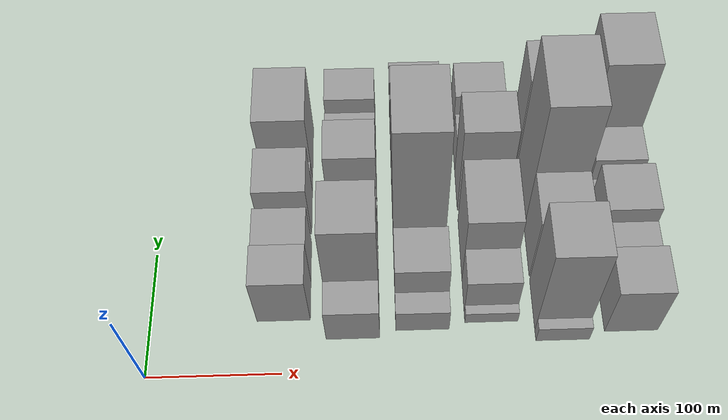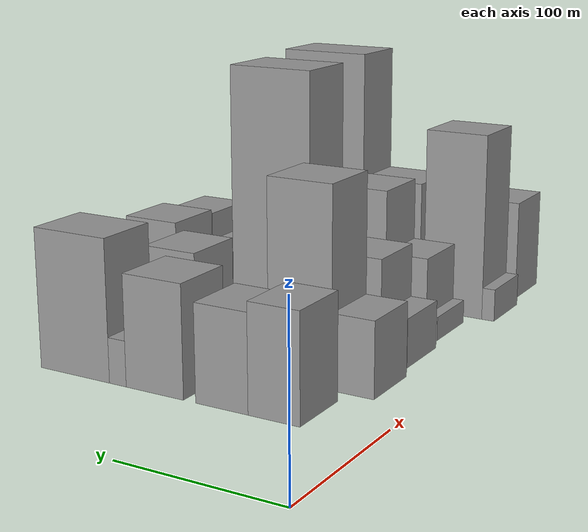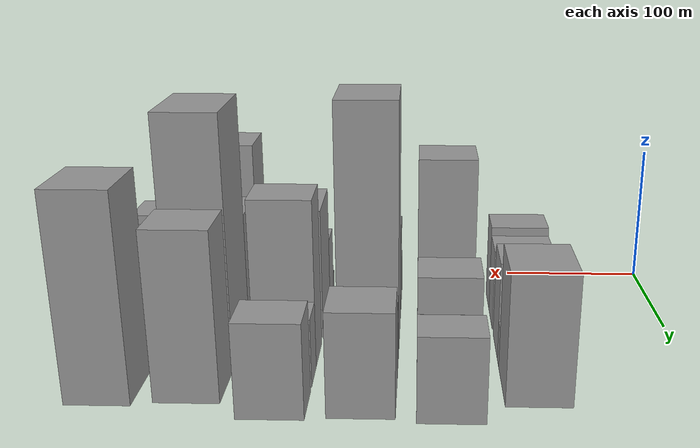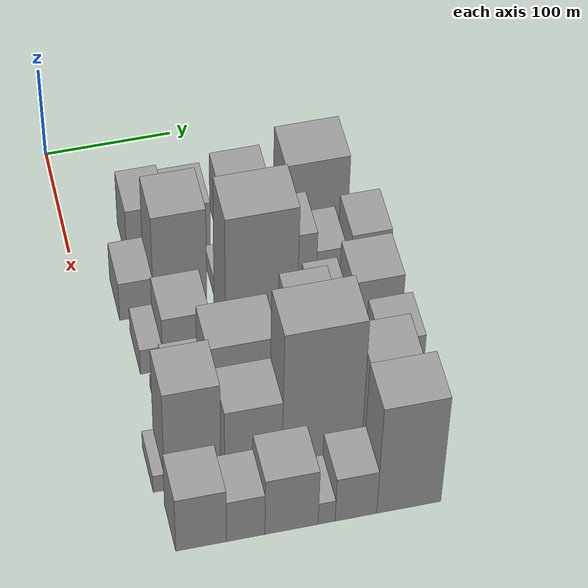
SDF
<sdf version="1.6">
 <world name="default">
  <model name="building_26">
   <static>1</static>
   <pose>100.0000 57.7635 0 0.000000 0.000000 0.000000</pose>
   <link name="link">
    <pose>0 0 31.50 0 0 0</pose>
    <collision name="collision"><geometry><box><size>40.0000 31.7774 63.0000</size></box></geometry></collision>
    <visual name="visual">
     <cast_shadows>0</cast_shadows>
     <geometry><box><size>40.0000 31.7774 63.0000</size></box></geometry>
     <material>
      <script>
       <uri>model://grey_wall/materials/scripts</uri>
       <uri>model://grey_wall/materials/textures</uri>
       <name>vrc/grey_wall</name>
      </script>
     </material>
    </visual>
   </link>
  </model>
  <model name="building_27">
   <static>1</static>
   <pose>100.0000 90.3993 0 0.000000 0.000000 0.000000</pose>
   <link name="link">
    <pose>0 0 28.50 0 0 0</pose>
    <collision name="collision"><geometry><box><size>40.0000 33.4941 57.0000</size></box></geometry></collision>
    <visual name="visual">
     <cast_shadows>0</cast_shadows>
     <geometry><box><size>40.0000 33.4941 57.0000</size></box></geometry>
     <material>
      <script>
       <uri>model://grey_wall/materials/scripts</uri>
       <uri>model://grey_wall/materials/textures</uri>
       <name>vrc/grey_wall</name>
      </script>
     </material>
    </visual>
   </link>
  </model>
  <model name="building_28">
   <static>1</static>
   <pose>100.0000 134.5882 0 0.000000 0.000000 0.000000</pose>
   <link name="link">
    <pose>0 0 33.00 0 0 0</pose>
    <collision name="collision"><geometry><box><size>40.0000 38.8838 66.0000</size></box></geometry></collision>
    <visual name="visual">
     <cast_shadows>0</cast_shadows>
     <geometry><box><size>40.0000 38.8838 66.0000</size></box></geometry>
     <material>
      <script>
       <uri>model://grey_wall/materials/scripts</uri>
       <uri>model://grey_wall/materials/textures</uri>
       <name>vrc/grey_wall</name>
      </script>
     </material>
    </visual>
   </link>
  </model>
  <model name="building_29">
   <static>1</static>
   <pose>100.0000 159.8942 0 0.000000 0.000000 0.000000</pose>
   <link name="link">
    <pose>0 0 13.50 0 0 0</pose>
    <collision name="collision"><geometry><box><size>40.0000 11.7282 27.0000</size></box></geometry></collision>
    <visual name="visual">
     <cast_shadows>0</cast_shadows>
     <geometry><box><size>40.0000 11.7282 27.0000</size></box></geometry>
     <material>
      <script>
       <uri>model://grey_wall/materials/scripts</uri>
       <uri>model://grey_wall/materials/textures</uri>
       <name>vrc/grey_wall</name>
      </script>
     </material>
    </visual>
   </link>
  </model>
  <model name="building_30">
   <static>1</static>
   <pose>100.0000 190.6563 0 0.000000 0.000000 0.000000</pose>
   <link name="link">
    <pose>0 0 42.00 0 0 0</pose>
    <collision name="collision"><geometry><box><size>40.0000 49.7961 84.0000</size></box></geometry></collision>
    <visual name="visual">
     <cast_shadows>0</cast_shadows>
     <geometry><box><size>40.0000 49.7961 84.0000</size></box></geometry>
     <material>
      <script>
       <uri>model://grey_wall/materials/scripts</uri>
       <uri>model://grey_wall/materials/textures</uri>
       <name>vrc/grey_wall</name>
      </script>
     </material>
    </visual>
   </link>
  </model>
  <model name="building_69">
   <static>1</static>
   <pose>152.0000 39.0133 0 0.000000 0.000000 0.000000</pose>
   <link name="link">
    <pose>0 0 22.50 0 0 0</pose>
    <collision name="collision"><geometry><box><size>40.0000 26.2181 45.0000</size></box></geometry></collision>
    <visual name="visual">
     <cast_shadows>0</cast_shadows>
     <geometry><box><size>40.0000 26.2181 45.0000</size></box></geometry>
     <material>
      <script>
       <uri>model://grey_wall/materials/scripts</uri>
       <uri>model://grey_wall/materials/textures</uri>
       <name>vrc/grey_wall</name>
      </script>
     </material>
    </visual>
   </link>
  </model>
  <model name="building_70">
   <static>1</static>
   <pose>152.0000 72.6944 0 0.000000 0.000000 0.000000</pose>
   <link name="link">
    <pose>0 0 58.50 0 0 0</pose>
    <collision name="collision"><geometry><box><size>40.0000 41.1441 117.0000</size></box></geometry></collision>
    <visual name="visual">
     <cast_shadows>0</cast_shadows>
     <geometry><box><size>40.0000 41.1441 117.0000</size></box></geometry>
     <material>
      <script>
       <uri>model://grey_wall/materials/scripts</uri>
       <uri>model://grey_wall/materials/textures</uri>
       <name>vrc/grey_wall</name>
      </script>
     </material>
    </visual>
   </link>
  </model>
  <model name="building_71">
   <static>1</static>
   <pose>152.0000 105.4673 0 0.000000 0.000000 0.000000</pose>
   <link name="link">
    <pose>0 0 10.50 0 0 0</pose>
    <collision name="collision"><geometry><box><size>40.0000 10.4016 21.0000</size></box></geometry></collision>
    <visual name="visual">
     <cast_shadows>0</cast_shadows>
     <geometry><box><size>40.0000 10.4016 21.0000</size></box></geometry>
     <material>
      <script>
       <uri>model://grey_wall/materials/scripts</uri>
       <uri>model://grey_wall/materials/textures</uri>
       <name>vrc/grey_wall</name>
      </script>
     </material>
    </visual>
   </link>
  </model>
  <model name="building_72">
   <static>1</static>
   <pose>152.0000 124.7403 0 0.000000 0.000000 0.000000</pose>
   <link name="link">
    <pose>0 0 18.00 0 0 0</pose>
    <collision name="collision"><geometry><box><size>40.0000 18.1444 36.0000</size></box></geometry></collision>
    <visual name="visual">
     <cast_shadows>0</cast_shadows>
     <geometry><box><size>40.0000 18.1444 36.0000</size></box></geometry>
     <material>
      <script>
       <uri>model://grey_wall/materials/scripts</uri>
       <uri>model://grey_wall/materials/textures</uri>
       <name>vrc/grey_wall</name>
      </script>
     </material>
    </visual>
   </link>
  </model>
  <model name="building_73">
   <static>1</static>
   <pose>152.0000 160.4949 0 0.000000 0.000000 0.000000</pose>
   <link name="link">
    <pose>0 0 33.00 0 0 0</pose>
    <collision name="collision"><geometry><box><size>40.0000 35.3648 66.0000</size></box></geometry></collision>
    <visual name="visual">
     <cast_shadows>0</cast_shadows>
     <geometry><box><size>40.0000 35.3648 66.0000</size></box></geometry>
     <material>
      <script>
       <uri>model://grey_wall/materials/scripts</uri>
       <uri>model://grey_wall/materials/textures</uri>
       <name>vrc/grey_wall</name>
      </script>
     </material>
    </visual>
   </link>
  </model>
  <model name="building_74">
   <static>1</static>
   <pose>152.0000 189.7388 0 0.000000 0.000000 0.000000</pose>
   <link name="link">
    <pose>0 0 21.00 0 0 0</pose>
    <collision name="collision"><geometry><box><size>40.0000 23.1231 42.0000</size></box></geometry></collision>
    <visual name="visual">
     <cast_shadows>0</cast_shadows>
     <geometry><box><size>40.0000 23.1231 42.0000</size></box></geometry>
     <material>
      <script>
       <uri>model://grey_wall/materials/scripts</uri>
       <uri>model://grey_wall/materials/textures</uri>
       <name>vrc/grey_wall</name>
      </script>
     </material>
    </visual>
   </link>
  </model>
  <model name="building_75">
   <static>1</static>
   <pose>152.0000 220.7002 0 0.000000 0.000000 0.000000</pose>
   <link name="link">
    <pose>0 0 27.00 0 0 0</pose>
    <collision name="collision"><geometry><box><size>40.0000 30.7996 54.0000</size></box></geometry></collision>
    <visual name="visual">
     <cast_shadows>0</cast_shadows>
     <geometry><box><size>40.0000 30.7996 54.0000</size></box></geometry>
     <material>
      <script>
       <uri>model://grey_wall/materials/scripts</uri>
       <uri>model://grey_wall/materials/textures</uri>
       <name>vrc/grey_wall</name>
      </script>
     </material>
    </visual>
   </link>
  </model>
  <model name="building_123">
   <static>1</static>
   <pose>204.0000 39.9931 0 0.000000 0.000000 0.000000</pose>
   <link name="link">
    <pose>0 0 15.00 0 0 0</pose>
    <collision name="collision"><geometry><box><size>40.0000 17.1262 30.0000</size></box></geometry></collision>
    <visual name="visual">
     <cast_shadows>0</cast_shadows>
     <geometry><box><size>40.0000 17.1262 30.0000</size></box></geometry>
     <material>
      <script>
       <uri>model://grey_wall/materials/scripts</uri>
       <uri>model://grey_wall/materials/textures</uri>
       <name>vrc/grey_wall</name>
      </script>
     </material>
    </visual>
   </link>
  </model>
  <model name="building_124">
   <static>1</static>
   <pose>204.0000 66.6481 0 0.000000 0.000000 0.000000</pose>
   <link name="link">
    <pose>0 0 31.50 0 0 0</pose>
    <collision name="collision"><geometry><box><size>40.0000 36.1836 63.0000</size></box></geometry></collision>
    <visual name="visual">
     <cast_shadows>0</cast_shadows>
     <geometry><box><size>40.0000 36.1836 63.0000</size></box></geometry>
     <material>
      <script>
       <uri>model://grey_wall/materials/scripts</uri>
       <uri>model://grey_wall/materials/textures</uri>
       <name>vrc/grey_wall</name>
      </script>
     </material>
    </visual>
   </link>
  </model>
  <model name="building_125">
   <static>1</static>
   <pose>204.0000 87.9606 0 0.000000 0.000000 0.000000</pose>
   <link name="link">
    <pose>0 0 7.50 0 0 0</pose>
    <collision name="collision"><geometry><box><size>40.0000 6.4415 15.0000</size></box></geometry></collision>
    <visual name="visual">
     <cast_shadows>0</cast_shadows>
     <geometry><box><size>40.0000 6.4415 15.0000</size></box></geometry>
     <material>
      <script>
       <uri>model://grey_wall/materials/scripts</uri>
       <uri>model://grey_wall/materials/textures</uri>
       <name>vrc/grey_wall</name>
      </script>
     </material>
    </visual>
   </link>
  </model>
  <model name="building_126">
   <static>1</static>
   <pose>204.0000 123.3204 0 0.000000 0.000000 0.000000</pose>
   <link name="link">
    <pose>0 0 84.00 0 0 0</pose>
    <collision name="collision"><geometry><box><size>40.0000 54.2782 168.0000</size></box></geometry></collision>
    <visual name="visual">
     <cast_shadows>0</cast_shadows>
     <geometry><box><size>40.0000 54.2782 168.0000</size></box></geometry>
     <material>
      <script>
       <uri>model://grey_wall/materials/scripts</uri>
       <uri>model://grey_wall/materials/textures</uri>
       <name>vrc/grey_wall</name>
      </script>
     </material>
    </visual>
   </link>
  </model>
  <model name="building_127">
   <static>1</static>
   <pose>204.0000 156.9671 0 0.000000 0.000000 0.000000</pose>
   <link name="link">
    <pose>0 0 13.50 0 0 0</pose>
    <collision name="collision"><geometry><box><size>40.0000 13.0151 27.0000</size></box></geometry></collision>
    <visual name="visual">
     <cast_shadows>0</cast_shadows>
     <geometry><box><size>40.0000 13.0151 27.0000</size></box></geometry>
     <material>
      <script>
       <uri>model://grey_wall/materials/scripts</uri>
       <uri>model://grey_wall/materials/textures</uri>
       <name>vrc/grey_wall</name>
      </script>
     </material>
    </visual>
   </link>
  </model>
  <model name="building_128">
   <static>1</static>
   <pose>204.0000 176.8619 0 0.000000 0.000000 0.000000</pose>
   <link name="link">
    <pose>0 0 24.00 0 0 0</pose>
    <collision name="collision"><geometry><box><size>40.0000 26.7745 48.0000</size></box></geometry></collision>
    <visual name="visual">
     <cast_shadows>0</cast_shadows>
     <geometry><box><size>40.0000 26.7745 48.0000</size></box></geometry>
     <material>
      <script>
       <uri>model://grey_wall/materials/scripts</uri>
       <uri>model://grey_wall/materials/textures</uri>
       <name>vrc/grey_wall</name>
      </script>
     </material>
    </visual>
   </link>
  </model>
  <model name="building_129">
   <static>1</static>
   <pose>204.0000 212.5238 0 0.000000 0.000000 0.000000</pose>
   <link name="link">
    <pose>0 0 33.00 0 0 0</pose>
    <collision name="collision"><geometry><box><size>40.0000 38.5494 66.0000</size></box></geometry></collision>
    <visual name="visual">
     <cast_shadows>0</cast_shadows>
     <geometry><box><size>40.0000 38.5494 66.0000</size></box></geometry>
     <material>
      <script>
       <uri>model://grey_wall/materials/scripts</uri>
       <uri>model://grey_wall/materials/textures</uri>
       <name>vrc/grey_wall</name>
      </script>
     </material>
    </visual>
   </link>
  </model>
  <model name="building_170">
   <static>1</static>
   <pose>256.0000 39.9478 0 0.000000 0.000000 0.000000</pose>
   <link name="link">
    <pose>0 0 7.50 0 0 0</pose>
    <collision name="collision"><geometry><box><size>40.0000 7.4678 15.0000</size></box></geometry></collision>
    <visual name="visual">
     <cast_shadows>0</cast_shadows>
     <geometry><box><size>40.0000 7.4678 15.0000</size></box></geometry>
     <material>
      <script>
       <uri>model://grey_wall/materials/scripts</uri>
       <uri>model://grey_wall/materials/textures</uri>
       <name>vrc/grey_wall</name>
      </script>
     </material>
    </visual>
   </link>
  </model>
  <model name="building_171">
   <static>1</static>
   <pose>256.0000 57.7739 0 0.000000 0.000000 0.000000</pose>
   <link name="link">
    <pose>0 0 25.50 0 0 0</pose>
    <collision name="collision"><geometry><box><size>40.0000 28.1845 51.0000</size></box></geometry></collision>
    <visual name="visual">
     <cast_shadows>0</cast_shadows>
     <geometry><box><size>40.0000 28.1845 51.0000</size></box></geometry>
     <material>
      <script>
       <uri>model://grey_wall/materials/scripts</uri>
       <uri>model://grey_wall/materials/textures</uri>
       <name>vrc/grey_wall</name>
      </script>
     </material>
    </visual>
   </link>
  </model>
  <model name="building_172">
   <static>1</static>
   <pose>256.0000 97.9400 0 0.000000 0.000000 0.000000</pose>
   <link name="link">
    <pose>0 0 45.00 0 0 0</pose>
    <collision name="collision"><geometry><box><size>40.0000 52.1477 90.0000</size></box></geometry></collision>
    <visual name="visual">
     <cast_shadows>0</cast_shadows>
     <geometry><box><size>40.0000 52.1477 90.0000</size></box></geometry>
     <material>
      <script>
       <uri>model://grey_wall/materials/scripts</uri>
       <uri>model://grey_wall/materials/textures</uri>
       <name>vrc/grey_wall</name>
      </script>
     </material>
    </visual>
   </link>
  </model>
  <model name="building_173">
   <static>1</static>
   <pose>256.0000 150.7555 0 0.000000 0.000000 0.000000</pose>
   <link name="link">
    <pose>0 0 55.50 0 0 0</pose>
    <collision name="collision"><geometry><box><size>40.0000 35.4832 111.0000</size></box></geometry></collision>
    <visual name="visual">
     <cast_shadows>0</cast_shadows>
     <geometry><box><size>40.0000 35.4832 111.0000</size></box></geometry>
     <material>
      <script>
       <uri>model://grey_wall/materials/scripts</uri>
       <uri>model://grey_wall/materials/textures</uri>
       <name>vrc/grey_wall</name>
      </script>
     </material>
    </visual>
   </link>
  </model>
  <model name="building_174">
   <static>1</static>
   <pose>256.0000 181.7886 0 0.000000 0.000000 0.000000</pose>
   <link name="link">
    <pose>0 0 22.50 0 0 0</pose>
    <collision name="collision"><geometry><box><size>40.0000 26.5829 45.0000</size></box></geometry></collision>
    <visual name="visual">
     <cast_shadows>0</cast_shadows>
     <geometry><box><size>40.0000 26.5829 45.0000</size></box></geometry>
     <material>
      <script>
       <uri>model://grey_wall/materials/scripts</uri>
       <uri>model://grey_wall/materials/textures</uri>
       <name>vrc/grey_wall</name>
      </script>
     </material>
    </visual>
   </link>
  </model>
  <model name="building_175">
   <static>1</static>
   <pose>256.0000 217.7363 0 0.000000 0.000000 0.000000</pose>
   <link name="link">
    <pose>0 0 30.00 0 0 0</pose>
    <collision name="collision"><geometry><box><size>40.0000 33.3126 60.0000</size></box></geometry></collision>
    <visual name="visual">
     <cast_shadows>0</cast_shadows>
     <geometry><box><size>40.0000 33.3126 60.0000</size></box></geometry>
     <material>
      <script>
       <uri>model://grey_wall/materials/scripts</uri>
       <uri>model://grey_wall/materials/textures</uri>
       <name>vrc/grey_wall</name>
      </script>
     </material>
    </visual>
   </link>
  </model>
  <model name="building_215">
   <static>1</static>
   <pose>308.0000 24.3256 0 0.000000 0.000000 0.000000</pose>
   <link name="link">
    <pose>0 0 10.50 0 0 0</pose>
    <collision name="collision"><geometry><box><size>40.0000 8.4529 21.0000</size></box></geometry></collision>
    <visual name="visual">
     <cast_shadows>0</cast_shadows>
     <geometry><box><size>40.0000 8.4529 21.0000</size></box></geometry>
     <material>
      <script>
       <uri>model://grey_wall/materials/scripts</uri>
       <uri>model://grey_wall/materials/textures</uri>
       <name>vrc/grey_wall</name>
      </script>
     </material>
    </visual>
   </link>
  </model>
  <model name="building_216">
   <static>1</static>
   <pose>308.0000 49.2310 0 0.000000 0.000000 0.000000</pose>
   <link name="link">
    <pose>0 0 60.00 0 0 0</pose>
    <collision name="collision"><geometry><box><size>40.0000 41.3578 120.0000</size></box></geometry></collision>
    <visual name="visual">
     <cast_shadows>0</cast_shadows>
     <geometry><box><size>40.0000 41.3578 120.0000</size></box></geometry>
     <material>
      <script>
       <uri>model://grey_wall/materials/scripts</uri>
       <uri>model://grey_wall/materials/textures</uri>
       <name>vrc/grey_wall</name>
      </script>
     </material>
    </visual>
   </link>
  </model>
  <model name="building_217">
   <static>1</static>
   <pose>308.0000 94.1140 0 0.000000 0.000000 0.000000</pose>
   <link name="link">
    <pose>0 0 42.00 0 0 0</pose>
    <collision name="collision"><geometry><box><size>40.0000 42.4082 84.0000</size></box></geometry></collision>
    <visual name="visual">
     <cast_shadows>0</cast_shadows>
     <geometry><box><size>40.0000 42.4082 84.0000</size></box></geometry>
     <material>
      <script>
       <uri>model://grey_wall/materials/scripts</uri>
       <uri>model://grey_wall/materials/textures</uri>
       <name>vrc/grey_wall</name>
      </script>
     </material>
    </visual>
   </link>
  </model>
  <model name="building_218">
   <static>1</static>
   <pose>308.0000 145.0527 0 0.000000 0.000000 0.000000</pose>
   <link name="link">
    <pose>0 0 82.50 0 0 0</pose>
    <collision name="collision"><geometry><box><size>40.0000 59.4692 165.0000</size></box></geometry></collision>
    <visual name="visual">
     <cast_shadows>0</cast_shadows>
     <geometry><box><size>40.0000 59.4692 165.0000</size></box></geometry>
     <material>
      <script>
       <uri>model://grey_wall/materials/scripts</uri>
       <uri>model://grey_wall/materials/textures</uri>
       <name>vrc/grey_wall</name>
      </script>
     </material>
    </visual>
   </link>
  </model>
  <model name="building_219">
   <static>1</static>
   <pose>308.0000 197.7988 0 0.000000 0.000000 0.000000</pose>
   <link name="link">
    <pose>0 0 54.00 0 0 0</pose>
    <collision name="collision"><geometry><box><size>40.0000 38.0230 108.0000</size></box></geometry></collision>
    <visual name="visual">
     <cast_shadows>0</cast_shadows>
     <geometry><box><size>40.0000 38.0230 108.0000</size></box></geometry>
     <material>
      <script>
       <uri>model://grey_wall/materials/scripts</uri>
       <uri>model://grey_wall/materials/textures</uri>
       <name>vrc/grey_wall</name>
      </script>
     </material>
    </visual>
   </link>
  </model>
  <model name="building_261">
   <static>1</static>
   <pose>360.0000 44.3161 0 0.000000 0.000000 0.000000</pose>
   <link name="link">
    <pose>0 0 33.00 0 0 0</pose>
    <collision name="collision"><geometry><box><size>40.0000 36.8439 66.0000</size></box></geometry></collision>
    <visual name="visual">
     <cast_shadows>0</cast_shadows>
     <geometry><box><size>40.0000 36.8439 66.0000</size></box></geometry>
     <material>
      <script>
       <uri>model://grey_wall/materials/scripts</uri>
       <uri>model://grey_wall/materials/textures</uri>
       <name>vrc/grey_wall</name>
      </script>
     </material>
    </visual>
   </link>
  </model>
  <model name="building_262">
   <static>1</static>
   <pose>360.0000 76.8091 0 0.000000 0.000000 0.000000</pose>
   <link name="link">
    <pose>0 0 25.50 0 0 0</pose>
    <collision name="collision"><geometry><box><size>40.0000 28.1420 51.0000</size></box></geometry></collision>
    <visual name="visual">
     <cast_shadows>0</cast_shadows>
     <geometry><box><size>40.0000 28.1420 51.0000</size></box></geometry>
     <material>
      <script>
       <uri>model://grey_wall/materials/scripts</uri>
       <uri>model://grey_wall/materials/textures</uri>
       <name>vrc/grey_wall</name>
      </script>
     </material>
    </visual>
   </link>
  </model>
  <model name="building_263">
   <static>1</static>
   <pose>360.0000 110.4440 0 0.000000 0.000000 0.000000</pose>
   <link name="link">
    <pose>0 0 34.50 0 0 0</pose>
    <collision name="collision"><geometry><box><size>40.0000 39.1278 69.0000</size></box></geometry></collision>
    <visual name="visual">
     <cast_shadows>0</cast_shadows>
     <geometry><box><size>40.0000 39.1278 69.0000</size></box></geometry>
     <material>
      <script>
       <uri>model://grey_wall/materials/scripts</uri>
       <uri>model://grey_wall/materials/textures</uri>
       <name>vrc/grey_wall</name>
      </script>
     </material>
    </visual>
   </link>
  </model>
  <model name="building_264">
   <static>1</static>
   <pose>360.0000 136.2731 0 0.000000 0.000000 0.000000</pose>
   <link name="link">
    <pose>0 0 13.50 0 0 0</pose>
    <collision name="collision"><geometry><box><size>40.0000 12.5305 27.0000</size></box></geometry></collision>
    <visual name="visual">
     <cast_shadows>0</cast_shadows>
     <geometry><box><size>40.0000 12.5305 27.0000</size></box></geometry>
     <material>
      <script>
       <uri>model://grey_wall/materials/scripts</uri>
       <uri>model://grey_wall/materials/textures</uri>
       <name>vrc/grey_wall</name>
      </script>
     </material>
    </visual>
   </link>
  </model>
  <model name="building_265">
   <static>1</static>
   <pose>360.0000 157.9328 0 0.000000 0.000000 0.000000</pose>
   <link name="link">
    <pose>0 0 27.00 0 0 0</pose>
    <collision name="collision"><geometry><box><size>40.0000 30.7889 54.0000</size></box></geometry></collision>
    <visual name="visual">
     <cast_shadows>0</cast_shadows>
     <geometry><box><size>40.0000 30.7889 54.0000</size></box></geometry>
     <material>
      <script>
       <uri>model://grey_wall/materials/scripts</uri>
       <uri>model://grey_wall/materials/textures</uri>
       <name>vrc/grey_wall</name>
      </script>
     </material>
    </visual>
   </link>
  </model>
  <model name="building_266">
   <static>1</static>
   <pose>360.0000 197.1536 0 0.000000 0.000000 0.000000</pose>
   <link name="link">
    <pose>0 0 66.00 0 0 0</pose>
    <collision name="collision"><geometry><box><size>40.0000 47.6527 132.0000</size></box></geometry></collision>
    <visual name="visual">
     <cast_shadows>0</cast_shadows>
     <geometry><box><size>40.0000 47.6527 132.0000</size></box></geometry>
     <material>
      <script>
       <uri>model://grey_wall/materials/scripts</uri>
       <uri>model://grey_wall/materials/textures</uri>
       <name>vrc/grey_wall</name>
      </script>
     </material>
    </visual>
   </link>
  </model>
 </world>
</sdf>
